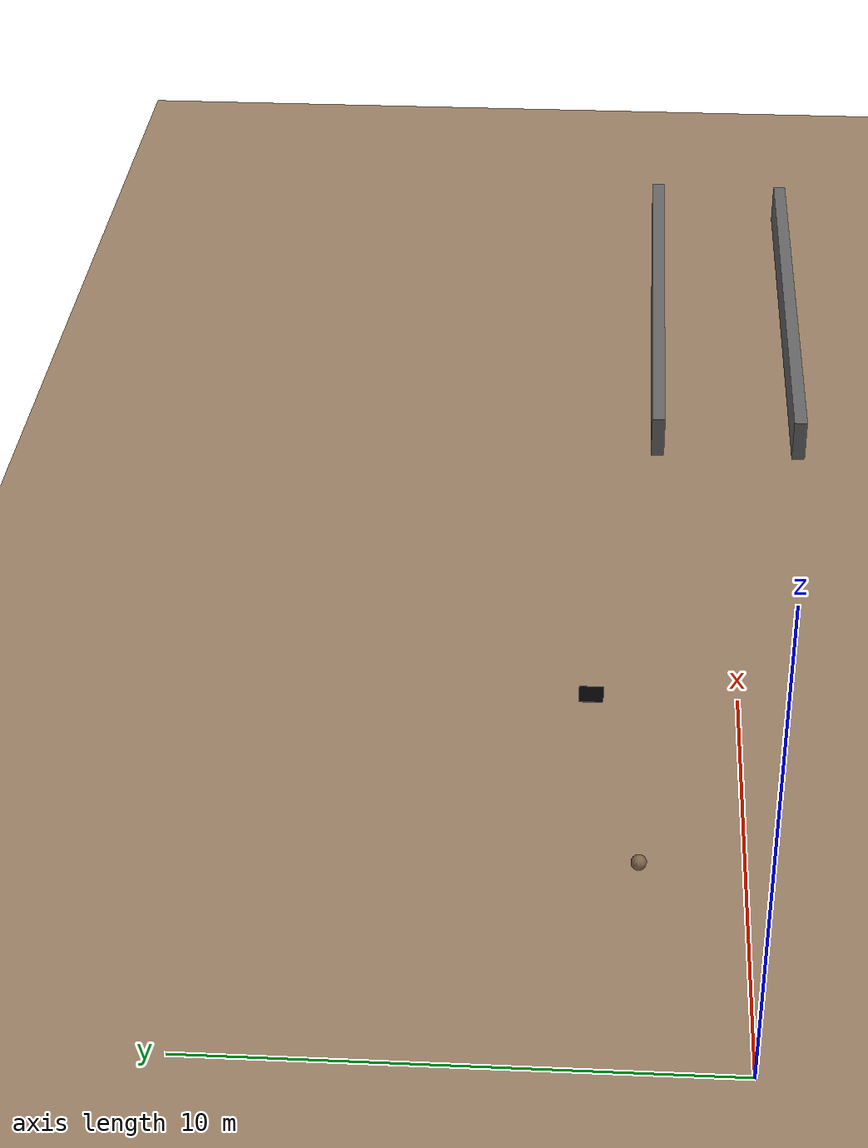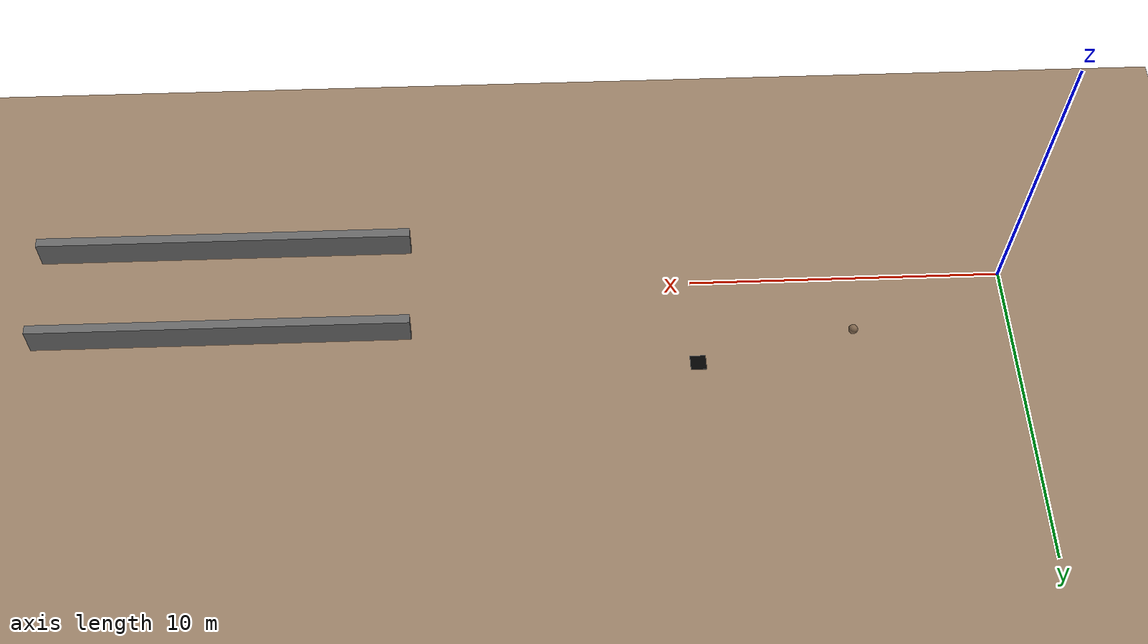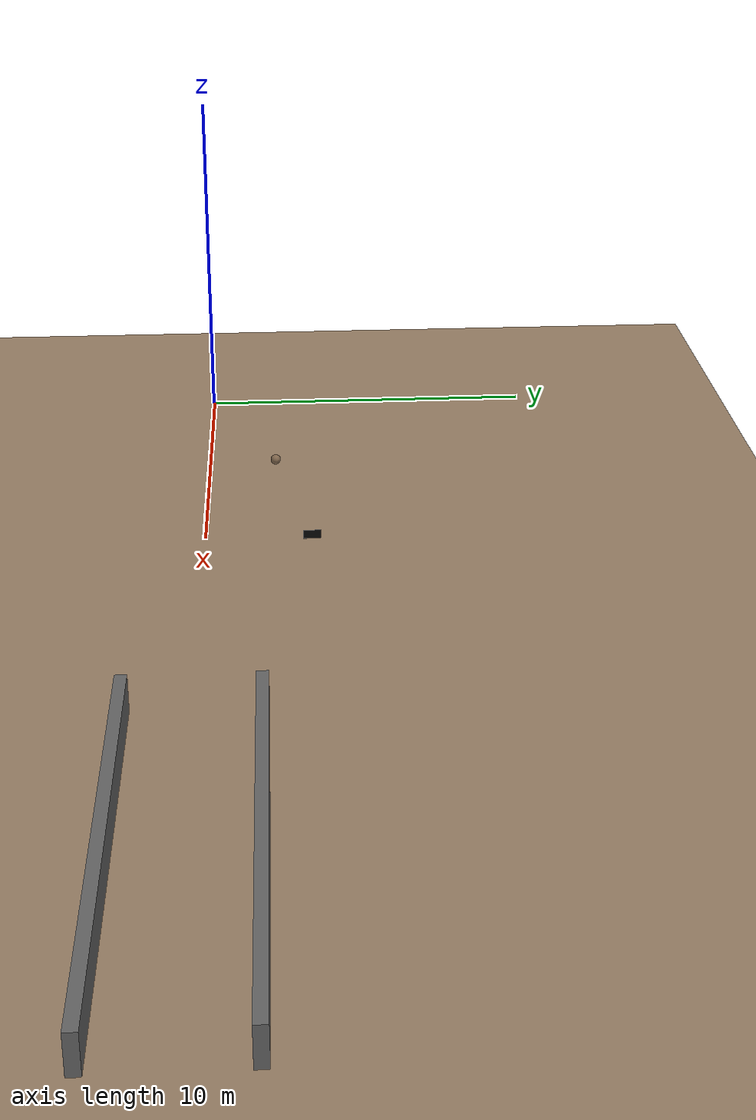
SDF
<?xml version="1.0" ?>
<sdf version="1.9">
  <world name="arc_arena">

    <!-- Fizik motoru -->
    <physics name="default_physics" type="ode">
      <max_step_size>0.001</max_step_size>
      <real_time_factor>1.0</real_time_factor>
    </physics>

    <!-- Güneş ışığı -->
    <light name="sun" type="directional">
      <cast_shadows>true</cast_shadows>
      <pose>0 0 10 0 0 0</pose>
      <direction>-0.5 0.1 -0.9</direction>
      <diffuse>0.8 0.8 0.8 1</diffuse>
      <specular>0.2 0.2 0.2 1</specular>
    </light>

    <!-- GPS datum: Ankara civarı -->
    <spherical_coordinates>
      <surface_model>EARTH_WGS84</surface_model>
      <latitude_deg>39.925018</latitude_deg>
      <longitude_deg>32.836956</longitude_deg>
      <elevation>890.0</elevation>
      <heading_deg>0</heading_deg>
    </spherical_coordinates>

    <!-- Zemin -->
    <model name="ground_plane">
      <static>true</static>
      <link name="link">
        <collision name="collision">
          <geometry>
            <plane>
              <normal>0 0 1</normal>
              <size>100 100</size>
            </plane>
          </geometry>
          <surface>
            <friction>
              <ode>
                <mu>0.8</mu>
                <mu2>0.8</mu2>
              </ode>
            </friction>
          </surface>
        </collision>
        <visual name="visual">
          <cast_shadows>false</cast_shadows>
          <geometry>
            <plane>
              <normal>0 0 1</normal>
              <size>100 100</size>
            </plane>
          </geometry>
          <material>
            <ambient>0.6 0.5 0.4 1</ambient>
            <diffuse>0.6 0.5 0.4 1</diffuse>
          </material>
        </visual>
      </link>
    </model>

    <!--
      TÜNEL BÖLGE (x: 19.5 – 30.5, GPS-denied)
      TODO (Faz 1): Leo Rover tünel geometrisi entegre edilecek
    -->
    <model name="tunnel_wall_left">
      <static>true</static>
      <pose>25 1.65 0.5 0 0 0</pose>
      <link name="link">
        <collision name="collision">
          <geometry>
            <box><size>12 0.3 1.0</size></box>
          </geometry>
        </collision>
        <visual name="visual">
          <geometry>
            <box><size>12 0.3 1.0</size></box>
          </geometry>
          <material>
            <ambient>0.4 0.4 0.4 1</ambient>
          </material>
        </visual>
      </link>
    </model>

    <model name="tunnel_wall_right">
      <static>true</static>
      <pose>25 -1.65 0.5 0 0 0</pose>
      <link name="link">
        <collision name="collision">
          <geometry>
            <box><size>12 0.3 1.0</size></box>
          </geometry>
        </collision>
        <visual name="visual">
          <geometry>
            <box><size>12 0.3 1.0</size></box>
          </geometry>
          <material>
            <ambient>0.4 0.4 0.4 1</ambient>
          </material>
        </visual>
      </link>
    </model>

    <!--
      ArUco MARKER PLACEHOLDER (TODO: Faz 2'de gerçek marker modeli eklenecek)
    -->
    <model name="aruco_marker_0">
      <static>true</static>
      <pose>10 3 0.05 0 0 0</pose>
      <link name="link">
        <visual name="visual">
          <geometry>
            <box><size>0.5 0.5 0.01</size></box>
          </geometry>
          <material>
            <ambient>0 0 0 1</ambient>
            <diffuse>0 0 0 1</diffuse>
          </material>
        </visual>
      </link>
    </model>

    <!--
      KAYA ENGELLERİ PLACEHOLDER (TODO: Faz 1'de gerçek mesh eklenecek)
    -->
    <model name="rock_1">
      <static>true</static>
      <pose>5 2 0.15 0 0 0</pose>
      <link name="link">
        <collision name="collision">
          <geometry><sphere><radius>0.15</radius></sphere></geometry>
        </collision>
        <visual name="visual">
          <geometry><sphere><radius>0.15</radius></sphere></geometry>
          <material>
            <ambient>0.5 0.4 0.3 1</ambient>
          </material>
        </visual>
      </link>
    </model>

  </world>
</sdf>
